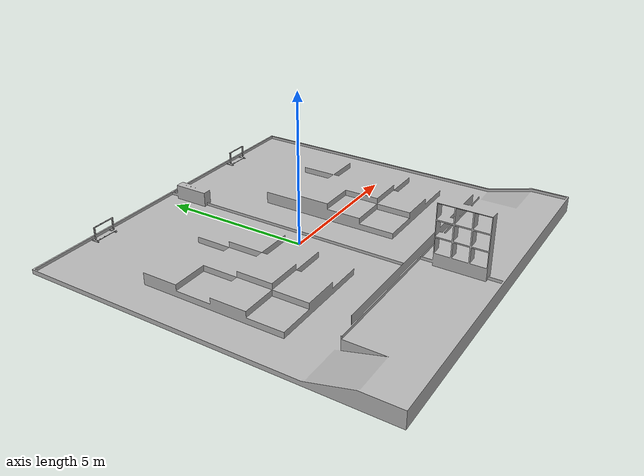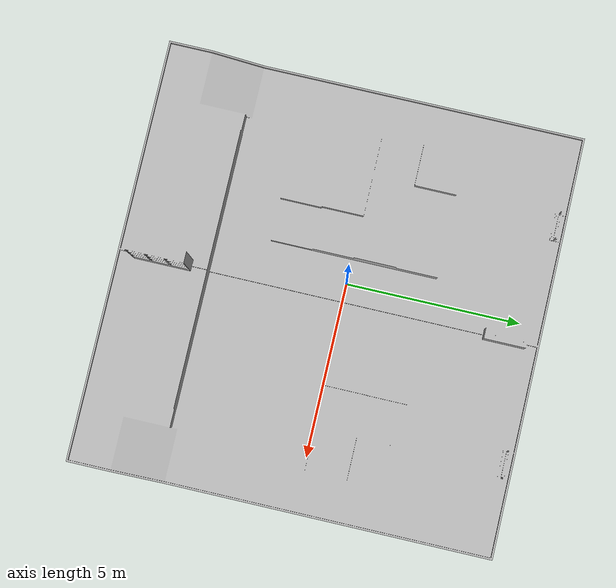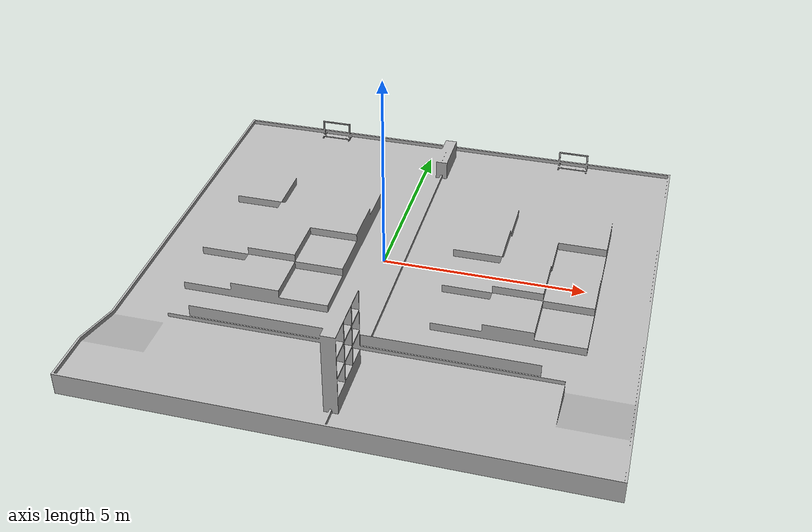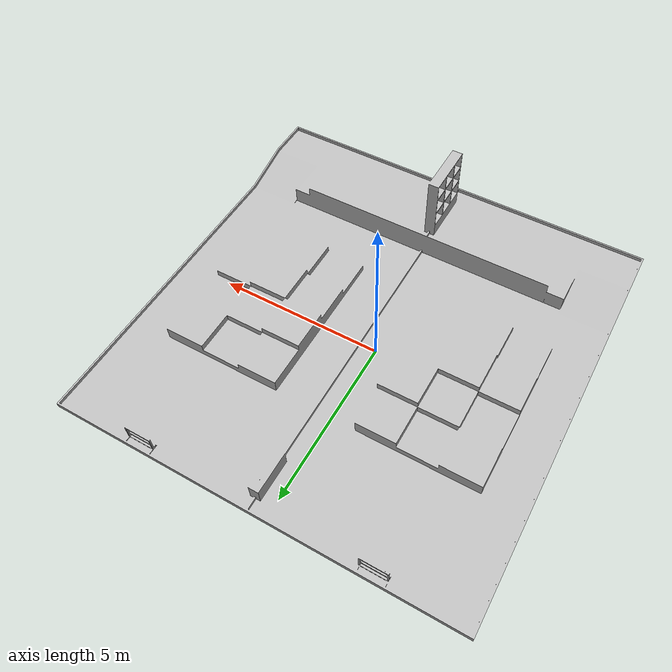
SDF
<sdf version='1.11'>

  <world name='robocon2026_arena'>

    <physics name='1ms' type='ignored'>
      <max_step_size>0.001</max_step_size>
      <real_time_factor>1</real_time_factor>
      <real_time_update_rate>1000</real_time_update_rate>
    </physics>

    <plugin name='gz::sim::systems::Physics' filename='gz-sim-physics-system'/>
    <plugin name='gz::sim::systems::UserCommands' filename='gz-sim-user-commands-system'/>
    <plugin name='gz::sim::systems::SceneBroadcaster' filename='gz-sim-scene-broadcaster-system'/>
    <plugin name='gz::sim::systems::Contact' filename='gz-sim-contact-system'/>

    <gravity>0 0 -9.8000000000000007</gravity>

    <magnetic_field>5.5644999999999998e-06 2.2875799999999999e-05 -4.2388400000000002e-05</magnetic_field>

    <atmosphere type='adiabatic'/>

    <scene>
      <ambient>0.400000006 0.400000006 0.400000006 1</ambient>
      <background>0.699999988 0.699999988 0.699999988 1</background>
      <shadows>true</shadows>
    </scene>

    <!-- ================= UNIFORM TOP LIGHT ================= -->
    <light name="sun" type="directional">
      <cast_shadows>true</cast_shadows>
      <pose>0 0 50 0 0 0</pose>
      <diffuse>1 1 1 1</diffuse>
      <specular>0.2 0.2 0.2 1</specular>

      <attenuation>
        <range>1000</range>
        <constant>1.0</constant>
        <linear>0.0</linear>
        <quadratic>0.0</quadratic>
      </attenuation>

      <!-- Straight downward -->
      <direction>0 0 -1</direction>
    </light>

    <model name='arena'>
      <link name='link'>
        <visual name='visual'>
          <geometry>
            <mesh>
              <uri>model://arena/meshes/arena.obj</uri>
            </mesh>
          </geometry>
        </visual>
        <collision name='collision'>
          <geometry>
            <mesh>
              <uri>model://arena/meshes/arena.obj</uri>
            </mesh>
          </geometry>
        </collision>
        <pose>0 0 0 0 0 0</pose>
        <enable_wind>false</enable_wind>
      </link>
      <pose>0.51293848026971656 -0.39026212001895133 0 1.5708 0 0</pose>
      <static>true</static>
      <self_collide>false</self_collide>
    </model>
  </world>
</sdf>
